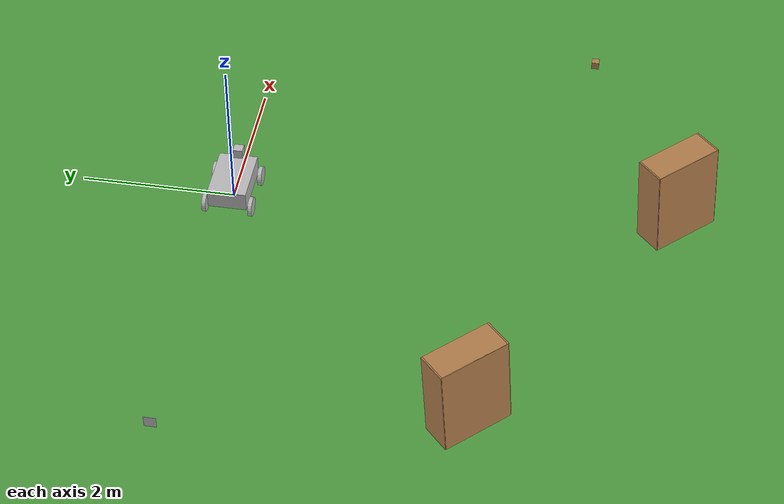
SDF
<sdf version="1.7">
 <world name="apriltag_world">
  <model name="grass_ground">
   <pose>-0.976022 -0.701641 0 0 -0 0</pose>
   <static>1</static>
   <link name="link">
    <collision name="collision">
     <geometry><plane><normal>0 0 1</normal><size>4745.75 3309.74</size></plane></geometry>
     <surface><friction><ode><mu>100</mu><mu2>50</mu2></ode></friction></surface>
    </collision>
    <visual name="visual">
     <cast_shadows>0</cast_shadows>
     <geometry><plane><normal>0 0 1</normal><size>100 100</size></plane></geometry>
     <material>
      <script><uri>file://media/materials/scripts/gazebo.material</uri><name>Gazebo/Grass</name></script>
     </material>
    </visual>
   </link>
  </model>
  <model name="apriltag_2">
   <static>1</static>
   <link name="link">
    <visual name="visual">
     <geometry><box><size>0.15 0.001 0.15</size></box></geometry>
     <material>
      <script>
       <uri>model://apriltag_2/materials/scripts</uri>
       <uri>model://apriltag_2/materials/textures</uri>
       <name>AprilTag/Tag2</name>
      </script>
     </material>
    </visual>
    <collision name="collision"><geometry><box><size>0.15 0.001 0.15</size></box></geometry></collision>
   </link>
   <pose>-4.29914 -1.1e-05 0.4 0 -0 1.5708</pose>
  </model>
  <model name="bookshelf">
   <static>1</static>
   <link name="link">
    <inertial><mass>1</mass></inertial>
    <collision name="back">
     <pose>0 0.005 0.6 0 -0 0</pose>
     <geometry><box><size>0.9 0.01 1.2</size></box></geometry>
    </collision>
    <visual name="visual1">
     <pose>0 0.005 0.6 0 -0 0</pose>
     <geometry><box><size>0.9 0.01 1.2</size></box></geometry>
     <material>
      <script><uri>file://media/materials/scripts/gazebo.material</uri><name>Gazebo/Wood</name></script>
     </material>
    </visual>
    <collision name="left_side">
     <pose>0.45 -0.195 0.6 0 -0 0</pose>
     <geometry><box><size>0.02 0.4 1.2</size></box></geometry>
    </collision>
    <visual name="visual2">
     <pose>0.45 -0.195 0.6 0 -0 0</pose>
     <geometry><box><size>0.02 0.4 1.2</size></box></geometry>
     <material>
      <script><uri>file://media/materials/scripts/gazebo.material</uri><name>Gazebo/Wood</name></script>
     </material>
    </visual>
    <collision name="right_side">
     <pose>-0.45 -0.195 0.6 0 -0 0</pose>
     <geometry><box><size>0.02 0.4 1.2</size></box></geometry>
    </collision>
    <visual name="visual3">
     <pose>-0.45 -0.195 0.6 0 -0 0</pose>
     <geometry><box><size>0.02 0.4 1.2</size></box></geometry>
     <material>
      <script><uri>file://media/materials/scripts/gazebo.material</uri><name>Gazebo/Wood</name></script>
     </material>
    </visual>
    <collision name="bottom">
     <pose>0 -0.195 0.03 0 -0 0</pose>
     <geometry><box><size>0.88 0.4 0.06</size></box></geometry>
    </collision>
    <visual name="visual4">
     <pose>0 -0.195 0.03 0 -0 0</pose>
     <geometry><box><size>0.88 0.4 0.06</size></box></geometry>
     <material>
      <script><uri>file://media/materials/scripts/gazebo.material</uri><name>Gazebo/Wood</name></script>
     </material>
    </visual>
    <collision name="top">
     <pose>0 -0.195 1.19 0 -0 0</pose>
     <geometry><box><size>0.88 0.4 0.02</size></box></geometry>
    </collision>
    <visual name="visual5">
     <pose>0 -0.195 1.19 0 -0 0</pose>
     <geometry><box><size>0.88 0.4 0.02</size></box></geometry>
     <material>
      <script><uri>file://media/materials/scripts/gazebo.material</uri><name>Gazebo/Wood</name></script>
     </material>
    </visual>
    <collision name="low_shelf">
     <pose>0 -0.195 0.43 0 -0 0</pose>
     <geometry><box><size>0.88 0.4 0.02</size></box></geometry>
    </collision>
    <visual name="visual6">
     <pose>0 -0.195 0.43 0 -0 0</pose>
     <geometry><box><size>0.88 0.4 0.02</size></box></geometry>
     <material>
      <script><uri>file://media/materials/scripts/gazebo.material</uri><name>Gazebo/Wood</name></script>
     </material>
    </visual>
    <collision name="high_shelf">
     <pose>0 -0.195 0.8 0 -0 0</pose>
     <geometry><box><size>0.88 0.4 0.02</size></box></geometry>
    </collision>
    <visual name="visual7">
     <pose>0 -0.195 0.8 0 -0 0</pose>
     <geometry><box><size>0.88 0.4 0.02</size></box></geometry>
     <material>
      <script><uri>file://media/materials/scripts/gazebo.material</uri><name>Gazebo/Wood</name></script>
     </material>
    </visual>
   </link>
   <pose>-3.53817 -3.65933 0.062872 0.033085 0.055459 2.30524</pose>
  </model>
  <model name="bookshelf_clone">
   <static>1</static>
   <link name="link">
    <inertial><mass>1</mass></inertial>
    <collision name="back">
     <pose>0 0.005 0.6 0 -0 0</pose>
     <geometry><box><size>0.9 0.01 1.2</size></box></geometry>
    </collision>
    <visual name="visual1">
     <pose>0 0.005 0.6 0 -0 0</pose>
     <geometry><box><size>0.9 0.01 1.2</size></box></geometry>
     <material>
      <script><uri>file://media/materials/scripts/gazebo.material</uri><name>Gazebo/Wood</name></script>
     </material>
    </visual>
    <collision name="left_side">
     <pose>0.45 -0.195 0.6 0 -0 0</pose>
     <geometry><box><size>0.02 0.4 1.2</size></box></geometry>
    </collision>
    <visual name="visual2">
     <pose>0.45 -0.195 0.6 0 -0 0</pose>
     <geometry><box><size>0.02 0.4 1.2</size></box></geometry>
     <material>
      <script><uri>file://media/materials/scripts/gazebo.material</uri><name>Gazebo/Wood</name></script>
     </material>
    </visual>
    <collision name="right_side">
     <pose>-0.45 -0.195 0.6 0 -0 0</pose>
     <geometry><box><size>0.02 0.4 1.2</size></box></geometry>
    </collision>
    <visual name="visual3">
     <pose>-0.45 -0.195 0.6 0 -0 0</pose>
     <geometry><box><size>0.02 0.4 1.2</size></box></geometry>
     <material>
      <script><uri>file://media/materials/scripts/gazebo.material</uri><name>Gazebo/Wood</name></script>
     </material>
    </visual>
    <collision name="bottom">
     <pose>0 -0.195 0.03 0 -0 0</pose>
     <geometry><box><size>0.88 0.4 0.06</size></box></geometry>
    </collision>
    <visual name="visual4">
     <pose>0 -0.195 0.03 0 -0 0</pose>
     <geometry><box><size>0.88 0.4 0.06</size></box></geometry>
     <material>
      <script><uri>file://media/materials/scripts/gazebo.material</uri><name>Gazebo/Wood</name></script>
     </material>
    </visual>
    <collision name="top">
     <pose>0 -0.195 1.19 0 -0 0</pose>
     <geometry><box><size>0.88 0.4 0.02</size></box></geometry>
    </collision>
    <visual name="visual5">
     <pose>0 -0.195 1.19 0 -0 0</pose>
     <geometry><box><size>0.88 0.4 0.02</size></box></geometry>
     <material>
      <script><uri>file://media/materials/scripts/gazebo.material</uri><name>Gazebo/Wood</name></script>
     </material>
    </visual>
    <collision name="low_shelf">
     <pose>0 -0.195 0.43 0 -0 0</pose>
     <geometry><box><size>0.88 0.4 0.02</size></box></geometry>
    </collision>
    <visual name="visual6">
     <pose>0 -0.195 0.43 0 -0 0</pose>
     <geometry><box><size>0.88 0.4 0.02</size></box></geometry>
     <material>
      <script><uri>file://media/materials/scripts/gazebo.material</uri><name>Gazebo/Wood</name></script>
     </material>
    </visual>
    <collision name="high_shelf">
     <pose>0 -0.195 0.8 0 -0 0</pose>
     <geometry><box><size>0.88 0.4 0.02</size></box></geometry>
    </collision>
    <visual name="visual7">
     <pose>0 -0.195 0.8 0 -0 0</pose>
     <geometry><box><size>0.88 0.4 0.02</size></box></geometry>
     <material>
      <script><uri>file://media/materials/scripts/gazebo.material</uri><name>Gazebo/Wood</name></script>
     </material>
    </visual>
   </link>
   <pose>0.147034 -5.81504 0.062872 0.033085 0.055459 2.30524</pose>
  </model>
  <model name="wood_cube_10cm_clone_2">
   <link name="link">
    <pose>0 0 0.05 0 -0 0</pose>
    <inertial>
     <mass>0.5167</mass>
     <inertia>
      <ixx>0.000861167</ixx>
      <ixy>0</ixy>
      <ixz>0</ixz>
      <iyy>0.000861167</iyy>
      <iyz>0</iyz>
      <izz>0.000861167</izz>
     </inertia>
    </inertial>
    <collision name="collision">
     <geometry><box><size>0.1 0.1 0.1</size></box></geometry>
     <surface>
      <contact>
       <poissons_ratio>0.347</poissons_ratio>
       <elastic_modulus>8.8e+09</elastic_modulus>
       <ode><kp>100000</kp><kd>100</kd><max_vel>100</max_vel><min_depth>0.001</min_depth></ode>
      </contact>
      <friction>
       <torsional>
        <coefficient>1</coefficient>
        <use_patch_radius>0</use_patch_radius>
        <surface_radius>0.01</surface_radius>
       </torsional>
      </friction>
     </surface>
    </collision>
    <visual name="visual">
     <geometry><box><size>0.1 0.1 0.1</size></box></geometry>
     <material>
      <script><uri>file://media/materials/scripts/gazebo.material</uri><name>Gazebo/Wood</name></script>
     </material>
    </visual>
   </link>
   <pose>3.4344 -4.38366 -0.001013 0 -0 0</pose>
  </model>
  <model name="my_bot">
   <link name="base_footprint">
    <inertial>
     <pose>0 0 0.25 0 -0 0</pose>
     <mass>31.25</mass>
     <inertia><ixx>0.813802</ixx><ixy>0</ixy><ixz>0</ixz><iyy>1.6276</iyy><iyz>0</iyz><izz>2.11589</izz></inertia>
    </inertial>
    <collision name="base_footprint_fixed_joint_lump__base_link_collision">
     <pose>0 0 0.25 0 -0 0</pose>
     <geometry><box><size>0.75 0.5 0.25</size></box></geometry>
    </collision>
    <visual name="base_footprint_fixed_joint_lump__base_link_visual">
     <pose>0 0 0.25 0 -0 0</pose>
     <geometry><box><size>0.75 0.5 0.25</size></box></geometry>
    </visual>
    <visual name="base_footprint_fixed_joint_lump__camera_link_visual_1">
     <pose>0.375 0 0.4375 0 -0 0</pose>
     <geometry><box><size>0.125 0.125 0.125</size></box></geometry>
    </visual>
    <sensor name="/apriltag_slam/camera" type="camera">
     <always_on>1</always_on>
     <update_rate>30</update_rate>
     <camera>
      <horizontal_fov>1.396</horizontal_fov>
      <image><width>640</width><height>480</height><format>R8G8B8</format></image>
      <clip><near>0.02</near><far>50</far></clip>
     </camera>
     <plugin name="camera_controller" filename="libgazebo_ros_camera.so">
      <frame_name>camera_optical_frame</frame_name>
     </plugin>
     <pose>0.375 0 0.4375 0 -0 0</pose>
    </sensor>
    <sensor name="imu_sensor" type="imu">
     <plugin name="imu_plugin" filename="libgazebo_ros_imu_sensor.so">
      <ros><namespace>/apriltag_slam/imu</namespace><remapping>~/out:=data_raw</remapping></ros>
      <initial_orientation_as_reference>0</initial_orientation_as_reference>
     </plugin>
     <always_on>1</always_on>
     <update_rate>100</update_rate>
     <imu>
      <angular_velocity>
       <x><noise type="gaussian"><mean>0</mean><stddev>0.001</stddev></noise></x>
       <y><noise type="gaussian"><mean>0</mean><stddev>0.001</stddev></noise></y>
       <z><noise type="gaussian"><mean>0</mean><stddev>0.001</stddev></noise></z>
      </angular_velocity>
      <linear_acceleration>
       <x><noise type="gaussian"><mean>0</mean><stddev>0.005</stddev></noise></x>
       <y><noise type="gaussian"><mean>0</mean><stddev>0.005</stddev></noise></y>
       <z><noise type="gaussian"><mean>0</mean><stddev>0.005</stddev></noise></z>
      </linear_acceleration>
     </imu>
     <pose>0 0 0.25 0 -0 0</pose>
    </sensor>
   </link>
   <joint name="front_left_steer_joint" type="revolute">
    <pose relative_to="base_footprint">0.3 0.3 0.125 0 -0 0</pose>
    <parent>base_footprint</parent>
    <child>front_left_steer_link</child>
    <axis>
     <xyz>0 0 1</xyz>
     <limit><lower>-0.6</lower><upper>0.6</upper><effort>50</effort><velocity>1</velocity></limit>
     <dynamics>
      <damping>0.5</damping>
      <friction>0</friction>
      <spring_reference>0</spring_reference>
      <spring_stiffness>0</spring_stiffness>
     </dynamics>
    </axis>
   </joint>
   <link name="front_left_steer_link">
    <pose relative_to="front_left_steer_joint">0 0 0 0 -0 0</pose>
    <inertial>
     <mass>0.5</mass>
     <inertia><ixx>0.001</ixx><ixy>0</ixy><ixz>0</ixz><iyy>0.001</iyy><iyz>0</iyz><izz>0.001</izz></inertia>
    </inertial>
   </link>
   <joint name="front_left_wheel_joint" type="revolute">
    <pose relative_to="front_left_steer_link">0 0 0 -1.5708 0 0</pose>
    <parent>front_left_steer_link</parent>
    <child>front_left_wheel_link</child>
    <axis>
     <xyz>0 0 1</xyz>
     <limit><lower>-1e+16</lower><upper>1e+16</upper></limit>
     <dynamics>
      <damping>0.1</damping>
      <friction>0.1</friction>
      <spring_reference>0</spring_reference>
      <spring_stiffness>0</spring_stiffness>
     </dynamics>
    </axis>
   </joint>
   <link name="front_left_wheel_link">
    <pose relative_to="front_left_wheel_joint">0 0 0 0 -0 0</pose>
    <inertial>
     <mass>3.1</mass>
     <inertia>
      <ixx>0.0127552</ixx>
      <ixy>0</ixy>
      <ixz>0</ixz>
      <iyy>0.0127552</iyy>
      <iyz>0</iyz>
      <izz>0.0242188</izz>
     </inertia>
    </inertial>
    <collision name="front_left_wheel_link_collision">
     <geometry><cylinder><length>0.05</length><radius>0.125</radius></cylinder></geometry>
    </collision>
    <visual name="front_left_wheel_link_visual">
     <geometry><cylinder><length>0.05</length><radius>0.125</radius></cylinder></geometry>
    </visual>
   </link>
   <joint name="front_right_steer_joint" type="revolute">
    <pose relative_to="base_footprint">0.3 -0.3 0.125 0 -0 0</pose>
    <parent>base_footprint</parent>
    <child>front_right_steer_link</child>
    <axis>
     <xyz>0 0 1</xyz>
     <limit><lower>-0.6</lower><upper>0.6</upper><effort>50</effort><velocity>1</velocity></limit>
     <dynamics>
      <damping>0.5</damping>
      <friction>0</friction>
      <spring_reference>0</spring_reference>
      <spring_stiffness>0</spring_stiffness>
     </dynamics>
    </axis>
   </joint>
   <link name="front_right_steer_link">
    <pose relative_to="front_right_steer_joint">0 0 0 0 -0 0</pose>
    <inertial>
     <mass>0.5</mass>
     <inertia><ixx>0.001</ixx><ixy>0</ixy><ixz>0</ixz><iyy>0.001</iyy><iyz>0</iyz><izz>0.001</izz></inertia>
    </inertial>
   </link>
   <joint name="front_right_wheel_joint" type="revolute">
    <pose relative_to="front_right_steer_link">0 0 0 -1.5708 0 0</pose>
    <parent>front_right_steer_link</parent>
    <child>front_right_wheel_link</child>
    <axis>
     <xyz>0 0 1</xyz>
     <limit><lower>-1e+16</lower><upper>1e+16</upper></limit>
     <dynamics>
      <damping>0.1</damping>
      <friction>0.1</friction>
      <spring_reference>0</spring_reference>
      <spring_stiffness>0</spring_stiffness>
     </dynamics>
    </axis>
   </joint>
   <link name="front_right_wheel_link">
    <pose relative_to="front_right_wheel_joint">0 0 0 0 -0 0</pose>
    <inertial>
     <mass>3.1</mass>
     <inertia>
      <ixx>0.0127552</ixx>
      <ixy>0</ixy>
      <ixz>0</ixz>
      <iyy>0.0127552</iyy>
      <iyz>0</iyz>
      <izz>0.0242188</izz>
     </inertia>
    </inertial>
    <collision name="front_right_wheel_link_collision">
     <geometry><cylinder><length>0.05</length><radius>0.125</radius></cylinder></geometry>
    </collision>
    <visual name="front_right_wheel_link_visual">
     <geometry><cylinder><length>0.05</length><radius>0.125</radius></cylinder></geometry>
    </visual>
   </link>
   <joint name="rear_left_wheel_joint" type="revolute">
    <pose relative_to="base_footprint">-0.3 0.3 0.125 -1.5708 0 0</pose>
    <parent>base_footprint</parent>
    <child>rear_left_wheel_link</child>
    <axis>
     <xyz>0 0 1</xyz>
     <limit><lower>-1e+16</lower><upper>1e+16</upper></limit>
     <dynamics>
      <damping>0.1</damping>
      <friction>0.1</friction>
      <spring_reference>0</spring_reference>
      <spring_stiffness>0</spring_stiffness>
     </dynamics>
    </axis>
   </joint>
   <link name="rear_left_wheel_link">
    <pose relative_to="rear_left_wheel_joint">0 0 0 0 -0 0</pose>
    <inertial>
     <mass>3.1</mass>
     <inertia>
      <ixx>0.0127552</ixx>
      <ixy>0</ixy>
      <ixz>0</ixz>
      <iyy>0.0127552</iyy>
      <iyz>0</iyz>
      <izz>0.0242188</izz>
     </inertia>
    </inertial>
    <collision name="rear_left_wheel_link_collision">
     <geometry><cylinder><length>0.05</length><radius>0.125</radius></cylinder></geometry>
    </collision>
    <visual name="rear_left_wheel_link_visual">
     <geometry><cylinder><length>0.05</length><radius>0.125</radius></cylinder></geometry>
    </visual>
   </link>
   <joint name="rear_right_wheel_joint" type="revolute">
    <pose relative_to="base_footprint">-0.3 -0.3 0.125 -1.5708 0 0</pose>
    <parent>base_footprint</parent>
    <child>rear_right_wheel_link</child>
    <axis>
     <xyz>0 0 1</xyz>
     <limit><lower>-1e+16</lower><upper>1e+16</upper></limit>
     <dynamics>
      <damping>0.1</damping>
      <friction>0.1</friction>
      <spring_reference>0</spring_reference>
      <spring_stiffness>0</spring_stiffness>
     </dynamics>
    </axis>
   </joint>
   <link name="rear_right_wheel_link">
    <pose relative_to="rear_right_wheel_joint">0 0 0 0 -0 0</pose>
    <inertial>
     <mass>3.1</mass>
     <inertia>
      <ixx>0.0127552</ixx>
      <ixy>0</ixy>
      <ixz>0</ixz>
      <iyy>0.0127552</iyy>
      <iyz>0</iyz>
      <izz>0.0242188</izz>
     </inertia>
    </inertial>
    <collision name="rear_right_wheel_link_collision">
     <geometry><cylinder><length>0.05</length><radius>0.125</radius></cylinder></geometry>
    </collision>
    <visual name="rear_right_wheel_link_visual">
     <geometry><cylinder><length>0.05</length><radius>0.125</radius></cylinder></geometry>
    </visual>
   </link>
   <plugin name="gazebo_ros2_control" filename="libgazebo_ros2_control.so">
    <parameters>/home/abhinand/Bionex-lab/slam_ws/install/apriltag_slam/share/apriltag_slam/config/effort.yaml</parameters>
   </plugin>
   <static>0</static>
   <plugin name="gazebo_ros_p3d" filename="libgazebo_ros_p3d.so">
    <ros><remapping>odom:=/apriltag_slam/ground_truth/odom</remapping></ros>
    <body_name>base_footprint</body_name>
    <frame_name>world</frame_name>
    <update_rate>50.0</update_rate>
    <xyz_offset>0 0 0</xyz_offset>
    <rpy_offset>0 0 0</rpy_offset>
    <publish_odom_tf>1</publish_odom_tf>
   </plugin>
  </model>
 </world>
</sdf>
